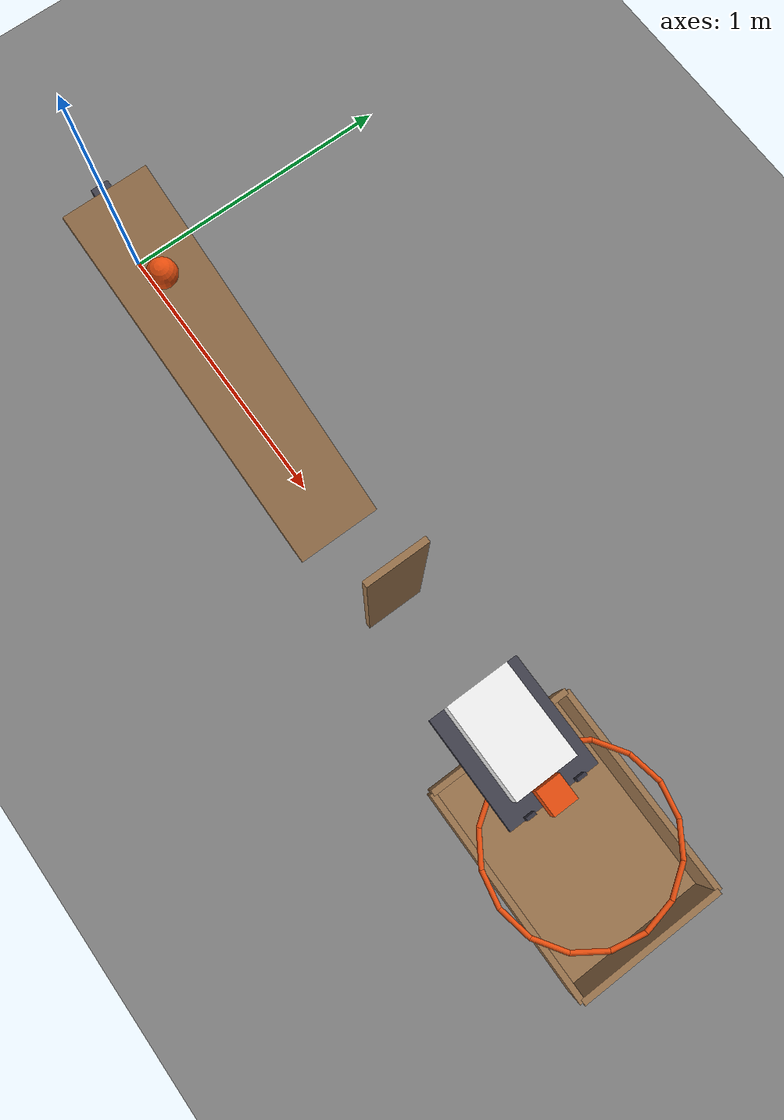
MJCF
<mujoco model="ball_paddle_slider_block_hoop_box">
  <compiler angle="radian"/>
  <option timestep="0.002"/>
  <worldbody>
    <geom name="floor" type="plane" size="6 6 0.1" friction="0.8 0.001 0.0005"/>
    <body name="ramp">
      <geom name="ramp" type="box" pos="0.6 0 0.25" size="0.65 0.15 0.02" euler="0 0.394791 0" friction="0.8 0.001 0.0005" rgba="0.6 0.45 0.3 1"/>
    </body>
    <body name="ramp leg">
      <geom name="ramp leg" type="box" pos="0 0 0.25" size="0.03 0.03 0.25" rgba="0.25 0.25 0.3 1"/>
    </body>
    <body name="ball" pos="0.303846 0 0.449231">
      <freejoint/>
      <geom name="ball" type="sphere" pos="0 0 0" size="0.05" mass="0.5" condim="6" friction="0.8 0.001 0.0005" rgba="0.9 0.3 0.05 1"/>
    </body>
    <body name="paddle" pos="1.5 0 0.015">
      <joint name="paddle_hinge" type="hinge" pos="0 0 0" axis="0 1 0" limited="true" range="0 1.74533"/>
      <geom name="paddle" type="box" pos="0 0 0.4" size="0.01 0.1 0.4" mass="0.6" friction="0.2 0.005 0.0001" rgba="0.6 0.45 0.3 1"/>
    </body>
    <body name="ledge">
      <geom name="ledge" type="box" pos="2.04 0 0.48" size="0.18 0.15 0.02" friction="0.2 0.005 0.0001" rgba="0.25 0.25 0.3 1"/>
    </body>
    <body name="slider" pos="2.01 0 0.56">
      <freejoint/>
      <geom name="slider" type="box" pos="0 0 0" size="0.15 0.1 0.06" mass="0.2" friction="0.2 0.005 0.0001" rgba="0.95 0.95 0.95 1"/>
    </body>
    <body name="left stop">
      <geom name="left stop" type="box" pos="2.215 0.085 0.525" size="0.005 0.015 0.025" rgba="0.2 0.2 0.25 1"/>
    </body>
    <body name="right stop">
      <geom name="right stop" type="box" pos="2.215 -0.085 0.525" size="0.005 0.015 0.025" rgba="0.2 0.2 0.25 1"/>
    </body>
    <body name="block" pos="2.21 0 0.54">
      <freejoint/>
      <geom name="block" type="box" pos="0 0 0" size="0.04 0.04 0.04" mass="0.15" friction="0.2 0.005 0.0001" rgba="0.9 0.3 0.05 1"/>
    </body>
    <body name="hoop">
      <geom name="hoop_00" type="capsule" size="0.008" fromto="2.668 0 0.32 2.64608 0.110213 0.32" rgba="0.9 0.3 0.05 1"/>
      <geom name="hoop_01" type="capsule" size="0.008" fromto="2.64608 0.110213 0.32 2.58365 0.203647 0.32" rgba="0.9 0.3 0.05 1"/>
      <geom name="hoop_02" type="capsule" size="0.008" fromto="2.58365 0.203647 0.32 2.49021 0.266077 0.32" rgba="0.9 0.3 0.05 1"/>
      <geom name="hoop_03" type="capsule" size="0.008" fromto="2.49021 0.266077 0.32 2.38 0.288 0.32" rgba="0.9 0.3 0.05 1"/>
      <geom name="hoop_04" type="capsule" size="0.008" fromto="2.38 0.288 0.32 2.26979 0.266077 0.32" rgba="0.9 0.3 0.05 1"/>
      <geom name="hoop_05" type="capsule" size="0.008" fromto="2.26979 0.266077 0.32 2.17635 0.203647 0.32" rgba="0.9 0.3 0.05 1"/>
      <geom name="hoop_06" type="capsule" size="0.008" fromto="2.17635 0.203647 0.32 2.11392 0.110213 0.32" rgba="0.9 0.3 0.05 1"/>
      <geom name="hoop_07" type="capsule" size="0.008" fromto="2.11392 0.110213 0.32 2.092 3.52698e-17 0.32" rgba="0.9 0.3 0.05 1"/>
      <geom name="hoop_08" type="capsule" size="0.008" fromto="2.092 3.52698e-17 0.32 2.11392 -0.110213 0.32" rgba="0.9 0.3 0.05 1"/>
      <geom name="hoop_09" type="capsule" size="0.008" fromto="2.11392 -0.110213 0.32 2.17635 -0.203647 0.32" rgba="0.9 0.3 0.05 1"/>
      <geom name="hoop_10" type="capsule" size="0.008" fromto="2.17635 -0.203647 0.32 2.26979 -0.266077 0.32" rgba="0.9 0.3 0.05 1"/>
      <geom name="hoop_11" type="capsule" size="0.008" fromto="2.26979 -0.266077 0.32 2.38 -0.288 0.32" rgba="0.9 0.3 0.05 1"/>
      <geom name="hoop_12" type="capsule" size="0.008" fromto="2.38 -0.288 0.32 2.49021 -0.266077 0.32" rgba="0.9 0.3 0.05 1"/>
      <geom name="hoop_13" type="capsule" size="0.008" fromto="2.49021 -0.266077 0.32 2.58365 -0.203647 0.32" rgba="0.9 0.3 0.05 1"/>
      <geom name="hoop_14" type="capsule" size="0.008" fromto="2.58365 -0.203647 0.32 2.64608 -0.110213 0.32" rgba="0.9 0.3 0.05 1"/>
      <geom name="hoop_15" type="capsule" size="0.008" fromto="2.64608 -0.110213 0.32 2.668 -7.05397e-17 0.32" rgba="0.9 0.3 0.05 1"/>
    </body>
    <body name="box">
      <geom name="box_base" type="box" pos="2.38 0 0.01" size="0.35 0.25 0.01" rgba="0.6 0.45 0.3 1"/>
      <geom name="box_near_wall" type="box" pos="2.03 0 0.11" size="0.01 0.25 0.11" rgba="0.6 0.45 0.3 1"/>
      <geom name="box_far_wall" type="box" pos="2.73 0 0.11" size="0.01 0.25 0.11" rgba="0.6 0.45 0.3 1"/>
      <geom name="box_left_wall" type="box" pos="2.38 0.25 0.11" size="0.35 0.01 0.11" rgba="0.6 0.45 0.3 1"/>
      <geom name="box_right_wall" type="box" pos="2.38 -0.25 0.11" size="0.35 0.01 0.11" rgba="0.6 0.45 0.3 1"/>
    </body>
  </worldbody>
  <keyframe>
    <key name="start" qpos="0.303846 0 0.449231 1 0 0 0 0 2.01 0 0.56 1 0 0 0 2.21 0 0.54 1 0 0 0" qvel="0 0 0 0 0 0 0 0 0 0 0 0 0 0 0 0 0 0 0"/>
  </keyframe>
</mujoco>
